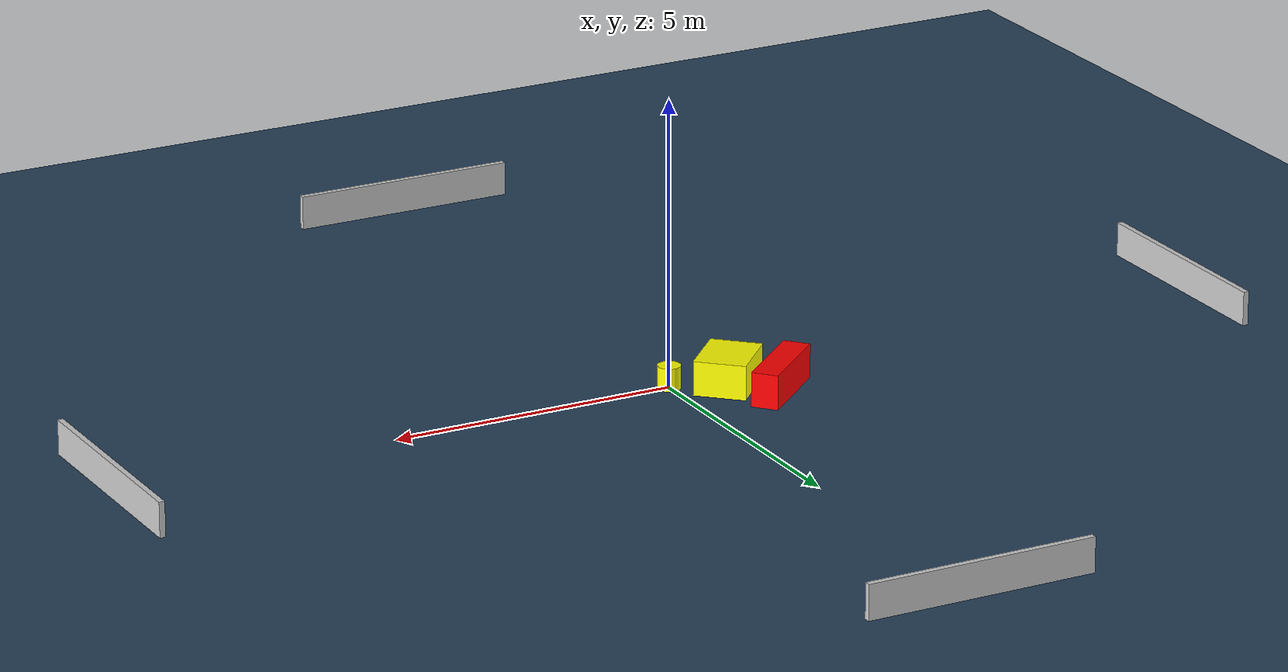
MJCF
<?xml version="1.0" ?>
<mujoco model="generated_environment">
  <option timestep="0.01" integrator="RK4" cone="elliptic"/>
  <default>
    <geom density="1"/>
  </default>
  <asset>
    <texture builtin="gradient" height="3072" name="skybox" rgb1="0.3 0.5 0.7" rgb2="0 0 0" type="skybox" width="512"/>
    <texture builtin="checker" height="300" name="groundplane" rgb1="0.2 0.3 0.4" rgb2="0.1 0.2 0.3" type="2d" width="300"/>
    <material name="groundplane" reflectance="0.2" texrepeat="5 5" texture="groundplane"/>
  </asset>
  <worldbody>
    <light dir="0 0 -1" directional="true" pos="0 0 1.5"/>
    <geom condim="3" friction="0.5 0.005 0.001" material="groundplane" name="floor" pos="0 0 0" size="0 0 0.05" type="plane"/>
    <body name="walls">
      <geom name="wall_1" condim="4" pos="-10.0 0.0 0.3" rgba="0.800000011920929 0.800000011920929 0.800000011920929 1.0" size="0.05 2.0 0.3" type="box"/>
      <geom name="wall_2" condim="4" pos="10.0 0.0 0.3" rgba="0.800000011920929 0.800000011920929 0.800000011920929 1.0" size="0.05 2.0 0.3" type="box"/>
      <geom name="wall_3" condim="4" pos="0.0 -10.0 0.3" rgba="0.800000011920929 0.800000011920929 0.800000011920929 1.0" size="2.0 0.05 0.3" type="box"/>
      <geom name="wall_4" condim="4" pos="0.0 10.0 0.3" rgba="0.800000011920929 0.800000011920929 0.800000011920929 1.0" size="2.0 0.05 0.3" type="box"/>
    </body>
    <body name="robot">
      <joint name="joint_x" type="slide" pos="0 0 0" axis="1 0 0"/>
      <joint name="joint_y" type="slide" pos="0 0 0" axis="0 1 0"/>
      <geom name="robot" type="cylinder" pos="0.0 0.0 0.2" size="0.2 0.2 0.0" mass="5.0" friction="1.0 0.005 0.0001" condim="4" rgba="1.0 1.0 0.0 1.0"/>
    </body>
    <body name="obstacle_1_movable">
      <geom name="obstacle_1_movable" condim="4" pos="-0.8826402783985506 0.40440448525265577 0.3" euler="0 0 46.536551245052756" friction="0.0 0.005 0.001" rgba="1.0 1.0 0.0 1.0" size="0.5551595413862206 0.44800909331994715 0.3" type="box" mass="0.1"/>
      <joint type="free"/>
    </body>
    <body name="obstacle_2_static">
      <geom name="obstacle_2_static" condim="4" pos="-1.5233714572433252 1.0423701972812245 0.3" euler="0 0 41.54308643374857" friction="0.0 0.005 0.001" rgba="1.0 0.0 0.0 1.0" size="0.7980577111677771 0.2339440203698343 0.3" type="box"/>
    </body>
  </worldbody>
  <actuator>
    <motor name="actuator_x" joint="joint_x" gear="1" ctrlrange="-1 1"/>
    <motor name="actuator_y" joint="joint_y" gear="1" ctrlrange="-1 1"/>
  </actuator>
</mujoco>
